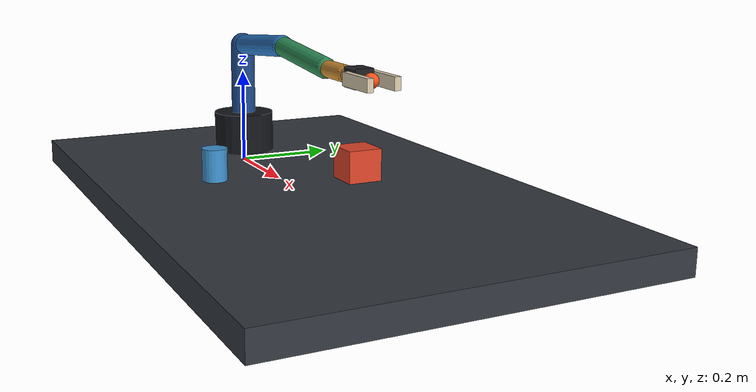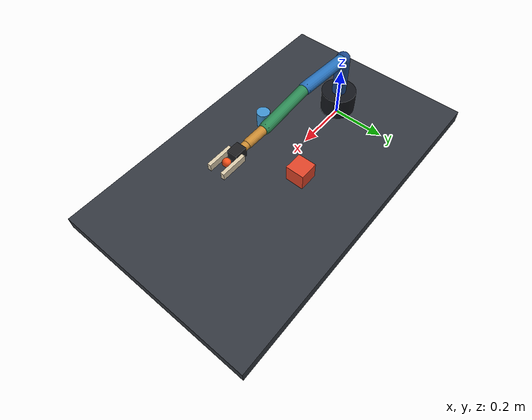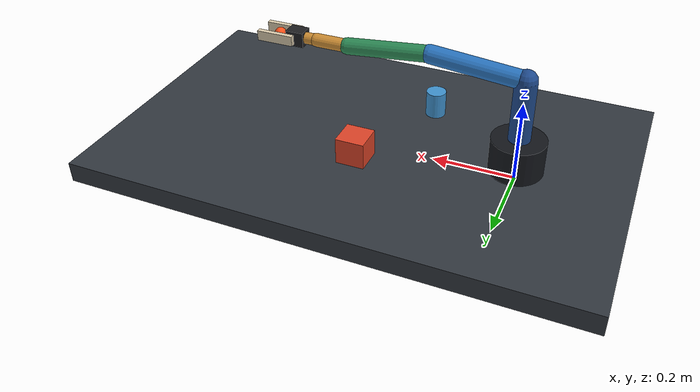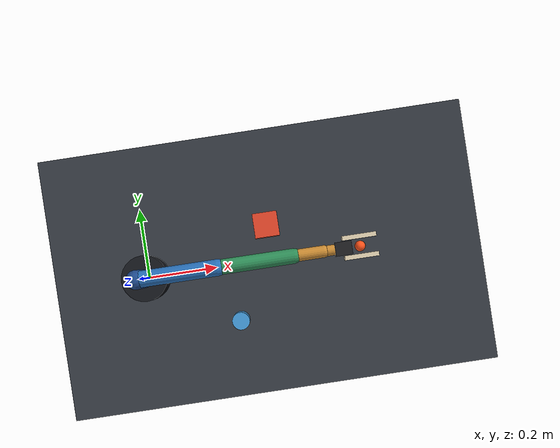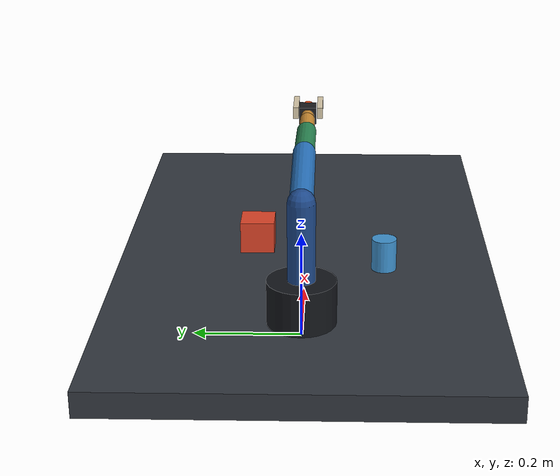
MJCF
<mujoco model="embodied_arm_6dof_grasp_scene">
  <compiler angle="degree" coordinate="local"/>
  <option timestep="0.005" gravity="0 0 -9.81"/>

  <default>
    <joint damping="0.35" armature="0.02"/>
    <geom friction="0.9 0.1 0.1" rgba="0.55 0.58 0.62 1"/>
  </default>

  <worldbody>
    <light name="key_light" pos="0.2 -0.5 1.4" dir="-0.1 0.3 -1"/>
    <camera name="overhead" pos="0.42 -0.62 0.78" xyaxes="1 0.25 0 -0.10 0.38 0.92"/>
    <geom name="table" type="box" size="0.62 0.38 0.025" pos="0.35 0 0" rgba="0.20 0.22 0.25 1"/>

    <body name="base" pos="0 0 0.055">
      <geom name="base_link" type="cylinder" size="0.065 0.055" rgba="0.08 0.09 0.11 1"/>
      <body name="shoulder_link" pos="0 0 0.055">
        <joint name="joint_1_yaw" type="hinge" axis="0 0 1" range="-170 170" limited="true"/>
        <geom type="capsule" fromto="0 0 0 0.00 0.00 0.15" size="0.026" rgba="0.12 0.29 0.55 1"/>
        <body name="upper_arm" pos="0 0 0.15">
          <joint name="joint_2_shoulder" type="hinge" axis="0 1 0" range="-85 110" limited="true"/>
          <geom type="capsule" fromto="0 0 0 0.22 0 0.02" size="0.022" rgba="0.16 0.45 0.74 1"/>
          <body name="forearm" pos="0.22 0 0.02">
            <joint name="joint_3_elbow" type="hinge" axis="0 1 0" range="-120 120" limited="true"/>
            <geom type="capsule" fromto="0 0 0 0.20 0 -0.02" size="0.020" rgba="0.18 0.55 0.34 1"/>
            <body name="wrist_1" pos="0.20 0 -0.02">
              <joint name="joint_4_wrist_pitch" type="hinge" axis="0 1 0" range="-120 120" limited="true"/>
              <geom type="capsule" fromto="0 0 0 0.08 0 0" size="0.016" rgba="0.80 0.55 0.20 1"/>
              <body name="wrist_2" pos="0.08 0 0">
                <joint name="joint_5_wrist_roll" type="hinge" axis="1 0 0" range="-180 180" limited="true"/>
                <geom type="capsule" fromto="0 0 0 0.05 0 0" size="0.014" rgba="0.80 0.55 0.20 1"/>
                <body name="tool_flange" pos="0.05 0 0">
                  <joint name="joint_6_tool_yaw" type="hinge" axis="0 0 1" range="-180 180" limited="true"/>
                  <geom type="box" size="0.022 0.018 0.018" rgba="0.12 0.12 0.13 1"/>
                  <site name="tcp" pos="0.045 0 0" size="0.014" rgba="1 0.32 0.10 1"/>
                  <geom name="left_finger" type="box" size="0.045 0.006 0.012" pos="0.045 0.026 0" rgba="0.86 0.80 0.68 1"/>
                  <geom name="right_finger" type="box" size="0.045 0.006 0.012" pos="0.045 -0.026 0" rgba="0.86 0.80 0.68 1"/>
                </body>
              </body>
            </body>
          </body>
        </body>
      </body>
    </body>

    <body name="target_block" pos="0.36 0.10 0.055">
      <joint name="target_free" type="free"/>
      <geom type="box" size="0.035 0.035 0.035" rgba="0.88 0.27 0.16 1"/>
    </body>
    <body name="distractor_cylinder" pos="0.25 -0.16 0.05">
      <geom type="cylinder" size="0.025 0.04" rgba="0.25 0.58 0.82 1"/>
    </body>
  </worldbody>

  <actuator>
    <position name="joint_1_pos" joint="joint_1_yaw" kp="35"/>
    <position name="joint_2_pos" joint="joint_2_shoulder" kp="35"/>
    <position name="joint_3_pos" joint="joint_3_elbow" kp="28"/>
    <position name="joint_4_pos" joint="joint_4_wrist_pitch" kp="18"/>
    <position name="joint_5_pos" joint="joint_5_wrist_roll" kp="12"/>
    <position name="joint_6_pos" joint="joint_6_tool_yaw" kp="12"/>
  </actuator>
</mujoco>
